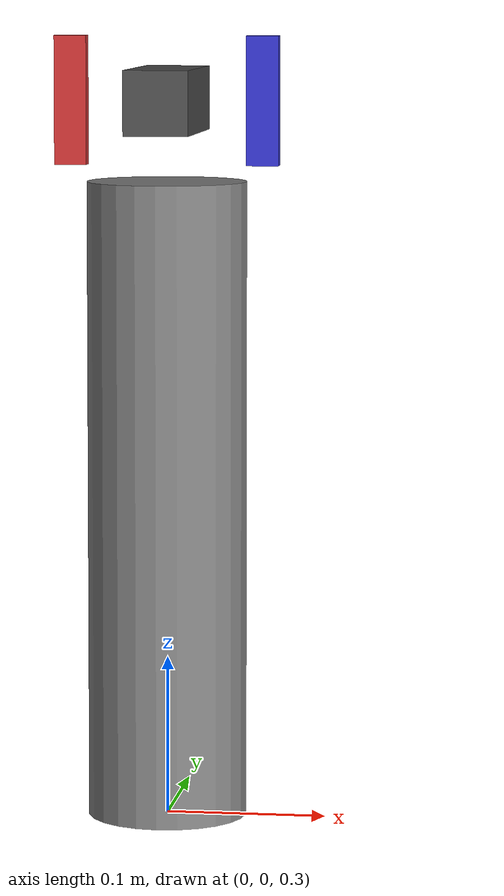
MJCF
<?xml version="1.0" encoding="utf-8"?>
<mujoco model="gripper">
    <compiler angle="radian" meshdir="meshes"/>

    <asset>
        <!-- Gripper mesh assets -->
        <mesh name="demo_gripper_left" file="demo_gripper_left.stl"/>
        <mesh name="demo_gripper_right" file="demo_gripper_right.stl"/>
    </asset>

    <worldbody>
        <!-- Ground plane -->
        <geom type="plane" size="1 1 0.1" rgba="0.8 0.8 0.8 1"/>

        <!-- Robot arm base (simplified) -->
        <body name="arm_base" pos="0 0 0.5">
            <geom type="cylinder" size="0.05 0.2" rgba="0.5 0.5 0.5 1"/>

            <!-- Gripper base -->
            <body name="gripper_base" pos="0 0 0.25">
                <geom type="box" size="0.02 0.05 0.02" rgba="0.3 0.3 0.3 1"/>

                <!-- Left gripper finger -->
                <body name="gripper_left" pos="-0.03 0 0">
                    <joint name="finger_left" type="slide" axis="1 0 0"
                           range="-0.05 0.05" damping="10"/>
                    <geom type="mesh" mesh="demo_gripper_left" rgba="0.8 0.2 0.2 1"/>
                </body>

                <!-- Right gripper finger -->
                <body name="gripper_right" pos="0.03 0 0">
                    <joint name="finger_right" type="slide" axis="1 0 0"
                           range="-0.05 0.05" damping="10"/>
                    <geom type="mesh" mesh="demo_gripper_right" rgba="0.2 0.2 0.8 1"/>
                </body>
            </body>
        </body>
    </worldbody>

    <actuator>
        <!-- Position control for gripper fingers -->
        <position name="left_finger_ctrl" joint="finger_left" kp="100"/>
        <position name="right_finger_ctrl" joint="finger_right" kp="100"/>
    </actuator>

    <equality>
        <!-- Optional: Couple the fingers to move together (symmetric gripper) -->
        <!-- Uncomment to make fingers mirror each other -->
    </equality>
</mujoco>
